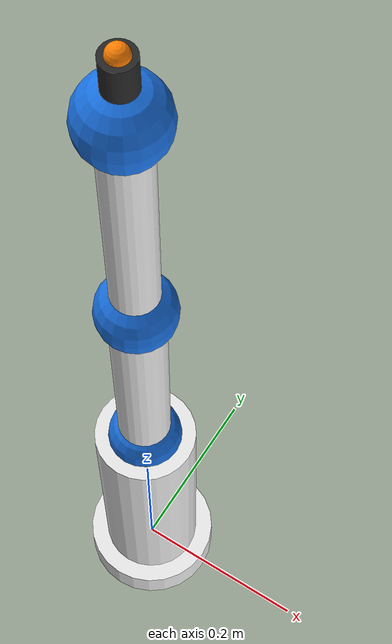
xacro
<?xml version="1.0" ?>
<robot name="poe_lite6_robot" xmlns:xacro="http://ros.org/wiki/xacro">

  <xacro:property name="PI"       value="3.14159265358979"/>
  <xacro:property name="D_BASE"   value="0.300"/>  <!-- base to shoulder pivot height -->
  <xacro:property name="L_UPPER" value="0.270"/>  <!-- shoulder to upper-arm/forearm joint (Z) -->
  <xacro:property name="L_FORE"  value="0.280"/>  <!-- forearm length (Z) -->
  <xacro:property name="D_TOOL"  value="0.070"/>  <!-- wrist to flange -->
  <xacro:property name="R"       value="0.028"/>  <!-- link tube radius -->
  <xacro:property name="R_JNT"   value="0.040"/>  <!-- joint sphere radius -->
  <xacro:property name="M"       value="1.2"/>    <!-- generic link mass -->

  <link name="world"/>
  <joint name="world_to_base" type="fixed">
    <parent link="world"/>
    <child  link="base_link"/>
    <origin xyz="0 0 0" rpy="0 0 0"/>
  </joint>

  <!-- base pedestal -->
  <link name="base_link">
    <inertial>
      <origin xyz="0 0 ${D_BASE/2}" rpy="0 0 0"/>
      <mass value="6.0"/>
      <inertia ixx="0.08" ixy="0" ixz="0" iyy="0.08" iyz="0" izz="0.04"/>
    </inertial>
    <visual>
      <origin xyz="0 0 ${D_BASE/2}" rpy="0 0 0"/>
      <geometry><cylinder radius="0.055" length="${D_BASE}"/></geometry>
      <material name="lite6_white"><color rgba="0.92 0.92 0.92 1"/></material>
    </visual>
    <visual>
      <origin xyz="0 0 0" rpy="0 0 0"/>
      <geometry><cylinder radius="0.075" length="0.04"/></geometry>
      <material name="lite6_white"><color rgba="0.92 0.92 0.92 1"/></material>
    </visual>
    <collision>
      <origin xyz="0 0 ${D_BASE/2}" rpy="0 0 0"/>
      <geometry><cylinder radius="0.055" length="${D_BASE}"/></geometry>
    </collision>
  </link>

  <!-- J0: waist — revolute Z -->
  <joint name="JOINT_0_ACT" type="revolute">
    <parent link="base_link"/>
    <child  link="link_1"/>
    <origin xyz="0 0 ${D_BASE}" rpy="0 0 0"/>
    <axis xyz="0 0 1"/>
    <limit lower="${-2*PI}" upper="${2*PI}" effort="50" velocity="3.14"/>
    <dynamics damping="0.5" friction="0.15"/>
  </joint>

  <!-- link_1: shoulder hub (J1 concurrent with J0 — zero offset) -->
  <link name="link_1">
    <inertial>
      <origin xyz="0 0 0" rpy="0 0 0"/>
      <mass value="0.3"/>
      <inertia ixx="0.001" ixy="0" ixz="0" iyy="0.001" iyz="0" izz="0.0005"/>
    </inertial>
    <visual>
      <origin xyz="0 0 0" rpy="0 0 0"/>
      <geometry><sphere radius="${R_JNT}"/></geometry>
      <material name="lite6_blue"><color rgba="0.1 0.45 0.9 1"/></material>
    </visual>
    <collision>
      <origin xyz="0 0 0" rpy="0 0 0"/>
      <geometry><sphere radius="${R_JNT}"/></geometry>
    </collision>
  </link>

  <!-- J1: shoulder pitch — revolute Y (concurrent with J0, T_left[1]=0) -->
  <joint name="JOINT_1_ACT" type="revolute">
    <parent link="link_1"/>
    <child  link="link_2"/>
    <origin xyz="0 0 0" rpy="0 0 0"/>
    <axis xyz="0 1 0"/>
    <limit lower="${-2.61}" upper="${2.61}" effort="50" velocity="3.14"/>
    <dynamics damping="0.5" friction="0.15"/>
  </joint>

  <!-- link_2: upper arm along Z (shoulder to forearm pivot) -->
  <link name="link_2">
    <inertial>
      <origin xyz="0 0 ${L_UPPER/2}" rpy="0 0 0"/>
      <mass value="${M}"/>
      <inertia ixx="0.015" ixy="0" ixz="0" iyy="0.015" iyz="0" izz="0.003"/>
    </inertial>
    <visual>
      <origin xyz="0 0 ${L_UPPER/2}" rpy="0 0 0"/>
      <geometry><cylinder radius="${R}" length="${L_UPPER}"/></geometry>
      <material name="lite6_white"><color rgba="0.92 0.92 0.92 1"/></material>
    </visual>
    <visual>
      <origin xyz="0 0 0" rpy="0 0 0"/>
      <geometry><sphere radius="${R_JNT}"/></geometry>
      <material name="lite6_blue"><color rgba="0.1 0.45 0.9 1"/></material>
    </visual>
    <collision>
      <origin xyz="0 0 ${L_UPPER/2}" rpy="0 0 0"/>
      <geometry><cylinder radius="${R}" length="${L_UPPER}"/></geometry>
    </collision>
  </link>

  <!-- J2: elbow — revolute X (NOT parallel to J1=Y → SphericalTwoIntersecting) -->
  <joint name="JOINT_2_ACT" type="revolute">
    <parent link="link_2"/>
    <child  link="link_3"/>
    <origin xyz="0 0 ${L_UPPER}" rpy="0 0 0"/>
    <axis xyz="1 0 0"/>
    <limit lower="${-2*PI}" upper="${2*PI}" effort="30" velocity="3.14"/>
    <dynamics damping="0.3" friction="0.1"/>
  </joint>

  <!-- link_3: forearm along Z (to wrist pivot) -->
  <link name="link_3">
    <inertial>
      <origin xyz="0 0 ${L_FORE/2}" rpy="0 0 0"/>
      <mass value="${M * 0.8}"/>
      <inertia ixx="0.010" ixy="0" ixz="0" iyy="0.010" iyz="0" izz="0.002"/>
    </inertial>
    <visual>
      <origin xyz="0 0 ${L_FORE/2}" rpy="0 0 0"/>
      <geometry><cylinder radius="${R*0.85}" length="${L_FORE}"/></geometry>
      <material name="lite6_white"><color rgba="0.92 0.92 0.92 1"/></material>
    </visual>
    <visual>
      <origin xyz="0 0 0" rpy="0 0 0"/>
      <geometry><sphere radius="${R_JNT}"/></geometry>
      <material name="lite6_blue"><color rgba="0.1 0.45 0.9 1"/></material>
    </visual>
    <collision>
      <origin xyz="0 0 ${L_FORE/2}" rpy="0 0 0"/>
      <geometry><cylinder radius="${R*0.85}" length="${L_FORE}"/></geometry>
    </collision>
  </link>

  <!-- J3: forearm pitch — revolute Y (at wrist pivot end of forearm) -->
  <joint name="JOINT_3_ACT" type="revolute">
    <parent link="link_3"/>
    <child  link="link_4"/>
    <origin xyz="0 0 ${L_FORE}" rpy="0 0 0"/>
    <axis xyz="0 1 0"/>
    <limit lower="${-2.61}" upper="${2.61}" effort="30" velocity="3.14"/>
    <dynamics damping="0.3" friction="0.1"/>
  </joint>

  <!-- link_4: wrist hub 1 (J3/J4 concurrent) -->
  <link name="link_4">
    <inertial>
      <origin xyz="0 0 0" rpy="0 0 0"/>
      <mass value="0.2"/>
      <inertia ixx="0.0008" ixy="0" ixz="0" iyy="0.0008" iyz="0" izz="0.0004"/>
    </inertial>
    <visual>
      <origin xyz="0 0 0" rpy="0 0 0"/>
      <geometry><sphere radius="${R_JNT}"/></geometry>
      <material name="lite6_blue"><color rgba="0.1 0.45 0.9 1"/></material>
    </visual>
    <collision>
      <origin xyz="0 0 0" rpy="0 0 0"/>
      <geometry><sphere radius="${R_JNT}"/></geometry>
    </collision>
  </link>

  <!-- J4: wrist roll — revolute Z (concurrent with J3) -->
  <joint name="JOINT_4_ACT" type="revolute">
    <parent link="link_4"/>
    <child  link="link_5"/>
    <origin xyz="0 0 0" rpy="0 0 0"/>
    <axis xyz="0 0 1"/>
    <limit lower="${-2*PI}" upper="${2*PI}" effort="20" velocity="3.14"/>
    <dynamics damping="0.2" friction="0.05"/>
  </joint>

  <!-- link_5: wrist hub 2 (J4/J5 concurrent) -->
  <link name="link_5">
    <inertial>
      <origin xyz="0 0 0" rpy="0 0 0"/>
      <mass value="0.15"/>
      <inertia ixx="0.0005" ixy="0" ixz="0" iyy="0.0005" iyz="0" izz="0.0003"/>
    </inertial>
    <visual>
      <origin xyz="0 0 0" rpy="0 0 0"/>
      <geometry><sphere radius="${R_JNT*0.8}"/></geometry>
      <material name="lite6_grey"><color rgba="0.6 0.6 0.6 1"/></material>
    </visual>
    <collision>
      <origin xyz="0 0 0" rpy="0 0 0"/>
      <geometry><sphere radius="${R_JNT*0.8}"/></geometry>
    </collision>
  </link>

  <!-- J5: wrist pitch — revolute Y (concurrent with J3, J4 → spherical wrist) -->
  <joint name="JOINT_5_ACT" type="revolute">
    <parent link="link_5"/>
    <child  link="link_6"/>
    <origin xyz="0 0 0" rpy="0 0 0"/>
    <axis xyz="0 1 0"/>
    <limit lower="${-2.61}" upper="${2.61}" effort="20" velocity="3.14"/>
    <dynamics damping="0.1" friction="0.03"/>
  </joint>

  <!-- link_6: flange + TCP marker -->
  <link name="link_6">
    <inertial>
      <origin xyz="0 0 ${D_TOOL/2}" rpy="0 0 0"/>
      <mass value="0.1"/>
      <inertia ixx="0.0003" ixy="0" ixz="0" iyy="0.0003" iyz="0" izz="0.0001"/>
    </inertial>
    <visual>
      <origin xyz="0 0 ${D_TOOL/2}" rpy="0 0 0"/>
      <geometry><cylinder radius="0.015" length="${D_TOOL}"/></geometry>
      <material name="lite6_dark"><color rgba="0.15 0.15 0.15 1"/></material>
    </visual>
    <visual>
      <origin xyz="0 0 ${D_TOOL}" rpy="0 0 0"/>
      <geometry><sphere radius="0.010"/></geometry>
      <material name="lite6_tcp"><color rgba="1.0 0.5 0.0 1"/></material>
    </visual>
    <collision>
      <origin xyz="0 0 ${D_TOOL/2}" rpy="0 0 0"/>
      <geometry><cylinder radius="0.015" length="${D_TOOL}"/></geometry>
    </collision>
  </link>

</robot>
